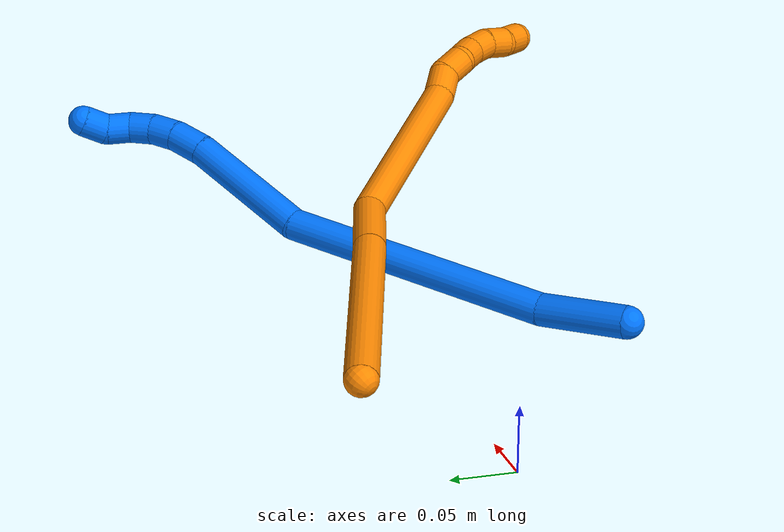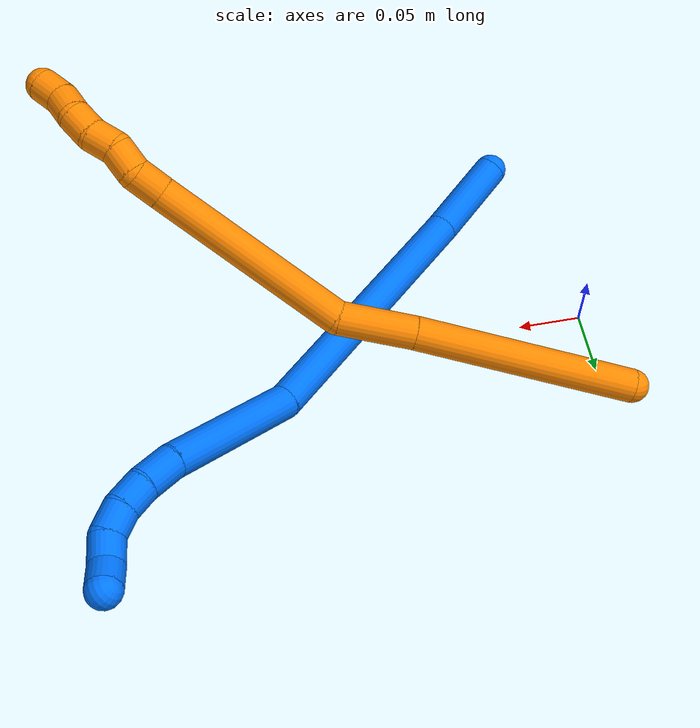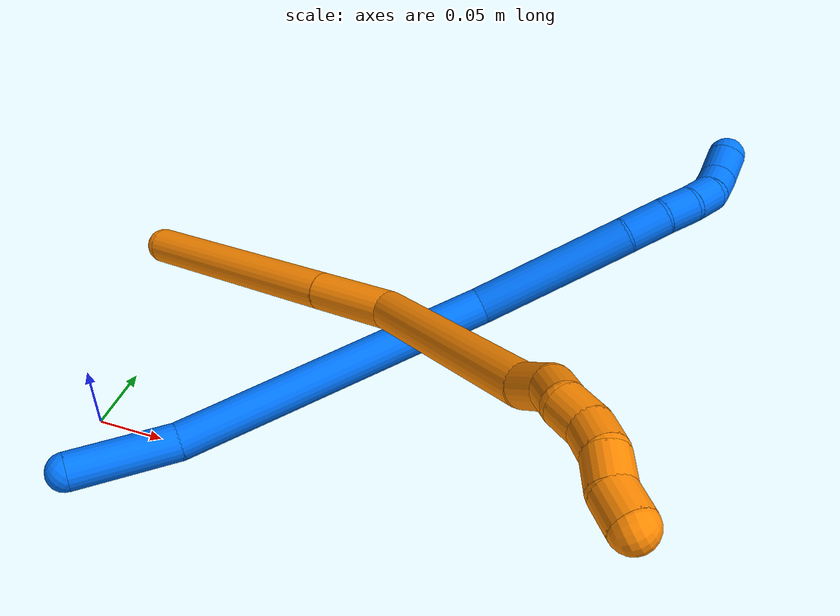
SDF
<sdf version="1.7">
 <world name="default">
  <model name="photoneo_s_sensor">
   <static>1</static>
   <pose>0 0 2 1.57079 1.57079 3.14159</pose>
   <link name="link">
    <inertial><mass>0.1</mass></inertial>
    <sensor name="sensor" type="depth">
     <update_rate>30</update_rate>
     <camera>
      <horizontal_fov>1.22</horizontal_fov>
      <image><width>1920</width><height>1200</height><format>B8G8R8</format></image>
      <clip><near>0.1</near><far>4</far></clip>
      <depth_camera><output>points</output></depth_camera>
     </camera>
     <plugin name="camera_plugin" filename="libgazebo_ros_depth_camera.so">
      <baseline>0.2</baseline>
      <alwaysOn>1</alwaysOn>
      <updateRate>0.0</updateRate>
      <cameraName>camera_ir</cameraName>
      <imageTopicName>/camera/color/image_raw</imageTopicName>
      <cameraInfoTopicName>/camera/color/camera_info</cameraInfoTopicName>
      <depthImageTopicName>/camera/depth/image_raw</depthImageTopicName>
      <depthImageCameraInfoTopicName>/camera/depth/camera_info</depthImageCameraInfoTopicName>
      <pointCloudTopicName>/camera/depth/points</pointCloudTopicName>
      <frameName>fr_optical</frameName>
      <pointCloudCutoff>0.1</pointCloudCutoff>
      <pointCloudCutoffMax>2.0</pointCloudCutoffMax>
      <distortionK1>0</distortionK1>
      <distortionK2>0</distortionK2>
      <distortionK3>0</distortionK3>
      <distortionT1>0</distortionT1>
      <distortionT2>0</distortionT2>
      <CxPrime>0</CxPrime>
      <Cx>0</Cx>
      <Cy>0</Cy>
      <focalLength>0</focalLength>
      <hackBaseline>0</hackBaseline>
     </plugin>
    </sensor>
   </link>
  </model>
  <model name="bin">
   <static>1</static>
   <link name="bottom">
    <collision name="collision-bottom">
     <pose>0 0 -0.01 0 -0 0</pose>
     <geometry><box><size>0.8 0.6 0.02</size></box></geometry>
     <surface>
      <friction><ode><mu>100</mu><mu2>100</mu2></ode></friction>
      <contact><collide_bitmask>65535</collide_bitmask></contact>
     </surface>
    </collision>
   </link>
   <link name="west_wall">
    <collision name="collision-west_wall">
     <pose>-0.41 0 0.1 0 -0 0</pose>
     <geometry><box><size>0.02 0.6 0.2</size></box></geometry>
     <surface>
      <friction><ode><mu>100</mu><mu2>100</mu2></ode></friction>
      <contact><collide_bitmask>65535</collide_bitmask></contact>
     </surface>
    </collision>
   </link>
   <link name="east_wall">
    <collision name="collision-east_wall">
     <pose>0.41 0 0.1 0 -0 0</pose>
     <geometry><box><size>0.02 0.6 0.2</size></box></geometry>
     <surface>
      <friction><ode><mu>100</mu><mu2>100</mu2></ode></friction>
      <contact><collide_bitmask>65535</collide_bitmask></contact>
     </surface>
    </collision>
   </link>
   <link name="south_wall">
    <collision name="collision-south_wall">
     <pose>0 -0.31 0.1 0 -0 0</pose>
     <geometry><box><size>0.8 0.02 0.2</size></box></geometry>
     <surface>
      <friction><ode><mu>100</mu><mu2>100</mu2></ode></friction>
      <contact><collide_bitmask>65535</collide_bitmask></contact>
     </surface>
    </collision>
   </link>
   <link name="north_wall">
    <collision name="collision-north_wall">
     <pose>0 0.31 0.1 0 -0 0</pose>
     <geometry><box><size>0.8 0.02 0.2</size></box></geometry>
     <surface>
      <friction><ode><mu>100</mu><mu2>100</mu2></ode></friction>
      <contact><collide_bitmask>65535</collide_bitmask></contact>
     </surface>
    </collision>
   </link>
  </model>
  <model name="14">
   <static>0</static>
   <link name="14">
    <collision name="collision-cylinder-e_1_1_4">
     <pose>0.018883 0.018399 -0.022484 -2.45576 0.576342 -1.38586</pose>
     <geometry><cylinder><radius>0.0125</radius><length>0.0693</length></cylinder></geometry>
     <surface>
      <friction><ode><mu>1.16</mu><mu2>1.16</mu2><slip1>0</slip1><slip2>0</slip2></ode></friction>
      <contact><ode><kp>1e+06</kp><kd>1</kd><max_vel>0</max_vel><min_depth>0.001</min_depth></ode></contact>
     </surface>
    </collision>
    <visual name="visual-cylinder-e_1_1_4">
     <pose>0.018883 0.018399 -0.022484 -2.45576 0.576342 -1.38586</pose>
     <geometry><cylinder><radius>0.0125</radius><length>0.0693</length></cylinder></geometry>
     <material><ambient>0 0.462745 1 1</ambient></material>
    </visual>
    <collision name="collision-cylinder-e_2_4_5">
     <pose>0.111124 0.093968 -0.098065 -2.31929 0.754589 -1.47542</pose>
     <geometry><cylinder><radius>0.0125</radius><length>0.214187</length></cylinder></geometry>
     <surface>
      <friction><ode><mu>1.16</mu><mu2>1.16</mu2><slip1>0</slip1><slip2>0</slip2></ode></friction>
      <contact><ode><kp>1e+06</kp><kd>1</kd><max_vel>0</max_vel><min_depth>0.001</min_depth></ode></contact>
     </surface>
    </collision>
    <visual name="visual-cylinder-e_2_4_5">
     <pose>0.111124 0.093968 -0.098065 -2.31929 0.754589 -1.47542</pose>
     <geometry><cylinder><radius>0.0125</radius><length>0.214187</length></cylinder></geometry>
     <material><ambient>0 0.462745 1 1</ambient></material>
    </visual>
    <collision name="collision-cylinder-e_3_5_6">
     <pose>0.230917 0.167378 -0.171991 -2.47928 1.05364 -2.07389</pose>
     <geometry><cylinder><radius>0.0125</radius><length>0.106843</length></cylinder></geometry>
     <surface>
      <friction><ode><mu>1.16</mu><mu2>1.16</mu2><slip1>0</slip1><slip2>0</slip2></ode></friction>
      <contact><ode><kp>1e+06</kp><kd>1</kd><max_vel>0</max_vel><min_depth>0.001</min_depth></ode></contact>
     </surface>
    </collision>
    <visual name="visual-cylinder-e_3_5_6">
     <pose>0.230917 0.167378 -0.171991 -2.47928 1.05364 -2.07389</pose>
     <geometry><cylinder><radius>0.0125</radius><length>0.106843</length></cylinder></geometry>
     <material><ambient>0 0.462745 1 1</ambient></material>
    </visual>
    <collision name="collision-cylinder-e_4_6_7">
     <pose>0.288293 0.189663 -0.198747 -2.34661 0.912308 -1.72606</pose>
     <geometry><cylinder><radius>0.0125</radius><length>0.027666</length></cylinder></geometry>
     <surface>
      <friction><ode><mu>1.16</mu><mu2>1.16</mu2><slip1>0</slip1><slip2>0</slip2></ode></friction>
      <contact><ode><kp>1e+06</kp><kd>1</kd><max_vel>0</max_vel><min_depth>0.001</min_depth></ode></contact>
     </surface>
    </collision>
    <visual name="visual-cylinder-e_4_6_7">
     <pose>0.288293 0.189663 -0.198747 -2.34661 0.912308 -1.72606</pose>
     <geometry><cylinder><radius>0.0125</radius><length>0.027666</length></cylinder></geometry>
     <material><ambient>0 0.462745 1 1</ambient></material>
    </visual>
    <collision name="collision-cylinder-e_5_7_8">
     <pose>0.30644 0.201647 -0.210054 -2.30655 0.732363 -1.42566</pose>
     <geometry><cylinder><radius>0.0125</radius><length>0.021555</length></cylinder></geometry>
     <surface>
      <friction><ode><mu>1.16</mu><mu2>1.16</mu2><slip1>0</slip1><slip2>0</slip2></ode></friction>
      <contact><ode><kp>1e+06</kp><kd>1</kd><max_vel>0</max_vel><min_depth>0.001</min_depth></ode></contact>
     </surface>
    </collision>
    <visual name="visual-cylinder-e_5_7_8">
     <pose>0.30644 0.201647 -0.210054 -2.30655 0.732363 -1.42566</pose>
     <geometry><cylinder><radius>0.0125</radius><length>0.021555</length></cylinder></geometry>
     <material><ambient>0 0.462745 1 1</ambient></material>
    </visual>
    <collision name="collision-cylinder-e_6_8_9">
     <pose>0.318689 0.215023 -0.220108 -2.13214 0.521197 -0.899406</pose>
     <geometry><cylinder><radius>0.0125</radius><length>0.020256</length></cylinder></geometry>
     <surface>
      <friction><ode><mu>1.16</mu><mu2>1.16</mu2><slip1>0</slip1><slip2>0</slip2></ode></friction>
      <contact><ode><kp>1e+06</kp><kd>1</kd><max_vel>0</max_vel><min_depth>0.001</min_depth></ode></contact>
     </surface>
    </collision>
    <visual name="visual-cylinder-e_6_8_9">
     <pose>0.318689 0.215023 -0.220108 -2.13214 0.521197 -0.899406</pose>
     <geometry><cylinder><radius>0.0125</radius><length>0.020256</length></cylinder></geometry>
     <material><ambient>0 0.462745 1 1</ambient></material>
    </visual>
    <collision name="collision-cylinder-e_7_9_10">
     <pose>0.326213 0.231974 -0.226699 -1.76949 0.25017 -0.304784</pose>
     <geometry><cylinder><radius>0.0125</radius><length>0.020038</length></cylinder></geometry>
     <surface>
      <friction><ode><mu>1.16</mu><mu2>1.16</mu2><slip1>0</slip1><slip2>0</slip2></ode></friction>
      <contact><ode><kp>1e+06</kp><kd>1</kd><max_vel>0</max_vel><min_depth>0.001</min_depth></ode></contact>
     </surface>
    </collision>
    <visual name="visual-cylinder-e_7_9_10">
     <pose>0.326213 0.231974 -0.226699 -1.76949 0.25017 -0.304784</pose>
     <geometry><cylinder><radius>0.0125</radius><length>0.020038</length></cylinder></geometry>
     <material><ambient>0 0.462745 1 1</ambient></material>
    </visual>
    <collision name="collision-cylinder-e_8_10_2">
     <pose>0.334384 0.249755 -0.227685 -1.45865 0.600122 -0.539548</pose>
     <geometry><cylinder><radius>0.0125</radius><length>0.020155</length></cylinder></geometry>
     <surface>
      <friction><ode><mu>1.16</mu><mu2>1.16</mu2><slip1>0</slip1><slip2>0</slip2></ode></friction>
      <contact><ode><kp>1e+06</kp><kd>1</kd><max_vel>0</max_vel><min_depth>0.001</min_depth></ode></contact>
     </surface>
    </collision>
    <visual name="visual-cylinder-e_8_10_2">
     <pose>0.334384 0.249755 -0.227685 -1.45865 0.600122 -0.539548</pose>
     <geometry><cylinder><radius>0.0125</radius><length>0.020155</length></cylinder></geometry>
     <material><ambient>0 0.462745 1 1</ambient></material>
    </visual>
    <collision name="collision-sphere-2">
     <pose>0.340075 0.258019 -0.226754 0 -0 0</pose>
     <geometry><sphere><radius>0.0125</radius></sphere></geometry>
     <surface>
      <friction><ode><mu>1.16</mu><mu2>1.16</mu2><slip1>0</slip1><slip2>0</slip2></ode></friction>
      <contact><ode><kp>1e+06</kp><kd>1</kd><max_vel>0</max_vel><min_depth>0.001</min_depth></ode></contact>
     </surface>
    </collision>
    <visual name="visual-sphere-2">
     <pose>0.340075 0.258019 -0.226754 0 -0 0</pose>
     <geometry><sphere><radius>0.0125</radius></sphere></geometry>
     <material><ambient>0 0.462745 1 1</ambient></material>
    </visual>
    <collision name="collision-sphere-10">
     <pose>0.328693 0.24149 -0.228615 0 -0 0</pose>
     <geometry><sphere><radius>0.0125</radius></sphere></geometry>
     <surface>
      <friction><ode><mu>1.16</mu><mu2>1.16</mu2><slip1>0</slip1><slip2>0</slip2></ode></friction>
      <contact><ode><kp>1e+06</kp><kd>1</kd><max_vel>0</max_vel><min_depth>0.001</min_depth></ode></contact>
     </surface>
    </collision>
    <visual name="visual-sphere-10">
     <pose>0.328693 0.24149 -0.228615 0 -0 0</pose>
     <geometry><sphere><radius>0.0125</radius></sphere></geometry>
     <material><ambient>0 0.462745 1 1</ambient></material>
    </visual>
    <collision name="collision-sphere-9">
     <pose>0.323732 0.222458 -0.224783 0 -0 0</pose>
     <geometry><sphere><radius>0.0125</radius></sphere></geometry>
     <surface>
      <friction><ode><mu>1.16</mu><mu2>1.16</mu2><slip1>0</slip1><slip2>0</slip2></ode></friction>
      <contact><ode><kp>1e+06</kp><kd>1</kd><max_vel>0</max_vel><min_depth>0.001</min_depth></ode></contact>
     </surface>
    </collision>
    <visual name="visual-sphere-9">
     <pose>0.323732 0.222458 -0.224783 0 -0 0</pose>
     <geometry><sphere><radius>0.0125</radius></sphere></geometry>
     <material><ambient>0 0.462745 1 1</ambient></material>
    </visual>
    <collision name="collision-sphere-4">
     <pose>0.037766 0.036799 -0.044967 0 -0 0</pose>
     <geometry><sphere><radius>0.0125</radius></sphere></geometry>
     <surface>
      <friction><ode><mu>1.16</mu><mu2>1.16</mu2><slip1>0</slip1><slip2>0</slip2></ode></friction>
      <contact><ode><kp>1e+06</kp><kd>1</kd><max_vel>0</max_vel><min_depth>0.001</min_depth></ode></contact>
     </surface>
    </collision>
    <visual name="visual-sphere-4">
     <pose>0.037766 0.036799 -0.044967 0 -0 0</pose>
     <geometry><sphere><radius>0.0125</radius></sphere></geometry>
     <material><ambient>0 0.462745 1 1</ambient></material>
    </visual>
    <collision name="collision-sphere-1">
     <geometry><sphere><radius>0.0125</radius></sphere></geometry>
     <surface>
      <friction><ode><mu>1.16</mu><mu2>1.16</mu2><slip1>0</slip1><slip2>0</slip2></ode></friction>
      <contact><ode><kp>1e+06</kp><kd>1</kd><max_vel>0</max_vel><min_depth>0.001</min_depth></ode></contact>
     </surface>
    </collision>
    <visual name="visual-sphere-1">
     <geometry><sphere><radius>0.0125</radius></sphere></geometry>
     <material><ambient>0 0.462745 1 1</ambient></material>
    </visual>
    <collision name="collision-sphere-8">
     <pose>0.313646 0.207588 -0.215432 0 -0 0</pose>
     <geometry><sphere><radius>0.0125</radius></sphere></geometry>
     <surface>
      <friction><ode><mu>1.16</mu><mu2>1.16</mu2><slip1>0</slip1><slip2>0</slip2></ode></friction>
      <contact><ode><kp>1e+06</kp><kd>1</kd><max_vel>0</max_vel><min_depth>0.001</min_depth></ode></contact>
     </surface>
    </collision>
    <visual name="visual-sphere-8">
     <pose>0.313646 0.207588 -0.215432 0 -0 0</pose>
     <geometry><sphere><radius>0.0125</radius></sphere></geometry>
     <material><ambient>0 0.462745 1 1</ambient></material>
    </visual>
    <collision name="collision-sphere-5">
     <pose>0.184482 0.151136 -0.151163 0 -0 0</pose>
     <geometry><sphere><radius>0.0125</radius></sphere></geometry>
     <surface>
      <friction><ode><mu>1.16</mu><mu2>1.16</mu2><slip1>0</slip1><slip2>0</slip2></ode></friction>
      <contact><ode><kp>1e+06</kp><kd>1</kd><max_vel>0</max_vel><min_depth>0.001</min_depth></ode></contact>
     </surface>
    </collision>
    <visual name="visual-sphere-5">
     <pose>0.184482 0.151136 -0.151163 0 -0 0</pose>
     <geometry><sphere><radius>0.0125</radius></sphere></geometry>
     <material><ambient>0 0.462745 1 1</ambient></material>
    </visual>
    <collision name="collision-sphere-6">
     <pose>0.277353 0.183621 -0.192819 0 -0 0</pose>
     <geometry><sphere><radius>0.0125</radius></sphere></geometry>
     <surface>
      <friction><ode><mu>1.16</mu><mu2>1.16</mu2><slip1>0</slip1><slip2>0</slip2></ode></friction>
      <contact><ode><kp>1e+06</kp><kd>1</kd><max_vel>0</max_vel><min_depth>0.001</min_depth></ode></contact>
     </surface>
    </collision>
    <visual name="visual-sphere-6">
     <pose>0.277353 0.183621 -0.192819 0 -0 0</pose>
     <geometry><sphere><radius>0.0125</radius></sphere></geometry>
     <material><ambient>0 0.462745 1 1</ambient></material>
    </visual>
    <collision name="collision-sphere-7">
     <pose>0.299234 0.195706 -0.204675 0 -0 0</pose>
     <geometry><sphere><radius>0.0125</radius></sphere></geometry>
     <surface>
      <friction><ode><mu>1.16</mu><mu2>1.16</mu2><slip1>0</slip1><slip2>0</slip2></ode></friction>
      <contact><ode><kp>1e+06</kp><kd>1</kd><max_vel>0</max_vel><min_depth>0.001</min_depth></ode></contact>
     </surface>
    </collision>
    <visual name="visual-sphere-7">
     <pose>0.299234 0.195706 -0.204675 0 -0 0</pose>
     <geometry><sphere><radius>0.0125</radius></sphere></geometry>
     <material><ambient>0 0.462745 1 1</ambient></material>
    </visual>
    <inertial>
     <pose>0.168189 0.125833 -0.12911 0 -0 0</pose>
     <mass>0.5</mass>
     <inertia>
      <ixx>-0.000609</ixx>
      <ixy>0</ixy>
      <ixz>0</ixz>
      <iyy>-0.000197</iyy>
      <iyz>0</iyz>
      <izz>-0.001194</izz>
     </inertia>
    </inertial>
   </link>
   <pose>0.05721 -0.102086 0.080776 -0.190554 -0.87636 0.343224</pose>
  </model>
  <model name="19">
   <static>0</static>
   <link name="19">
    <collision name="collision-cylinder-e_1_1_4">
     <pose>0.057549 0.016318 0.057114 -0.27829 0.769574 -0.113312</pose>
     <geometry><cylinder><radius>0.0125</radius><length>0.165411</length></cylinder></geometry>
     <surface>
      <friction><ode><mu>1.16</mu><mu2>1.16</mu2><slip1>0</slip1><slip2>0</slip2></ode></friction>
      <contact><ode><kp>1e+06</kp><kd>1</kd><max_vel>0</max_vel><min_depth>0.001</min_depth></ode></contact>
     </surface>
    </collision>
    <visual name="visual-cylinder-e_1_1_4">
     <pose>0.057549 0.016318 0.057114 -0.27829 0.769574 -0.113312</pose>
     <geometry><cylinder><radius>0.0125</radius><length>0.165411</length></cylinder></geometry>
     <material><ambient>0.996078 0.537255 0 1</ambient></material>
    </visual>
    <collision name="collision-cylinder-e_2_4_5">
     <pose>0.134073 0.039268 0.134191 -0.32075 0.733944 -0.124199</pose>
     <geometry><cylinder><radius>0.0125</radius><length>0.056658</length></cylinder></geometry>
     <surface>
      <friction><ode><mu>1.16</mu><mu2>1.16</mu2><slip1>0</slip1><slip2>0</slip2></ode></friction>
      <contact><ode><kp>1e+06</kp><kd>1</kd><max_vel>0</max_vel><min_depth>0.001</min_depth></ode></contact>
     </surface>
    </collision>
    <visual name="visual-cylinder-e_2_4_5">
     <pose>0.134073 0.039268 0.134191 -0.32075 0.733944 -0.124199</pose>
     <geometry><cylinder><radius>0.0125</radius><length>0.056658</length></cylinder></geometry>
     <material><ambient>0.996078 0.537255 0 1</ambient></material>
    </visual>
    <collision name="collision-cylinder-e_3_5_6">
     <pose>0.220533 0.043082 0.189122 0.080406 1.0914 0.04884</pose>
     <geometry><cylinder><radius>0.0125</radius><length>0.152117</length></cylinder></geometry>
     <surface>
      <friction><ode><mu>1.16</mu><mu2>1.16</mu2><slip1>0</slip1><slip2>0</slip2></ode></friction>
      <contact><ode><kp>1e+06</kp><kd>1</kd><max_vel>0</max_vel><min_depth>0.001</min_depth></ode></contact>
     </surface>
    </collision>
    <visual name="visual-cylinder-e_3_5_6">
     <pose>0.220533 0.043082 0.189122 0.080406 1.0914 0.04884</pose>
     <geometry><cylinder><radius>0.0125</radius><length>0.152117</length></cylinder></geometry>
     <material><ambient>0.996078 0.537255 0 1</ambient></material>
    </visual>
    <collision name="collision-cylinder-e_4_6_7">
     <pose>0.296928 0.037514 0.231441 0.358035 0.848644 0.163136</pose>
     <geometry><cylinder><radius>0.0125</radius><length>0.023749</length></cylinder></geometry>
     <surface>
      <friction><ode><mu>1.16</mu><mu2>1.16</mu2><slip1>0</slip1><slip2>0</slip2></ode></friction>
      <contact><ode><kp>1e+06</kp><kd>1</kd><max_vel>0</max_vel><min_depth>0.001</min_depth></ode></contact>
     </surface>
    </collision>
    <visual name="visual-cylinder-e_4_6_7">
     <pose>0.296928 0.037514 0.231441 0.358035 0.848644 0.163136</pose>
     <geometry><cylinder><radius>0.0125</radius><length>0.023749</length></cylinder></geometry>
     <material><ambient>0.996078 0.537255 0 1</ambient></material>
    </visual>
    <collision name="collision-cylinder-e_5_7_8">
     <pose>0.316205 0.032712 0.240694 0.823158 1.3073 0.645344</pose>
     <geometry><cylinder><radius>0.0125</radius><length>0.021474</length></cylinder></geometry>
     <surface>
      <friction><ode><mu>1.16</mu><mu2>1.16</mu2><slip1>0</slip1><slip2>0</slip2></ode></friction>
      <contact><ode><kp>1e+06</kp><kd>1</kd><max_vel>0</max_vel><min_depth>0.001</min_depth></ode></contact>
     </surface>
    </collision>
    <visual name="visual-cylinder-e_5_7_8">
     <pose>0.316205 0.032712 0.240694 0.823158 1.3073 0.645344</pose>
     <geometry><cylinder><radius>0.0125</radius><length>0.021474</length></cylinder></geometry>
     <material><ambient>0.996078 0.537255 0 1</ambient></material>
    </visual>
    <collision name="collision-cylinder-e_6_8_9">
     <pose>0.335909 0.03237 0.246234 -0.438963 1.16423 -0.291572</pose>
     <geometry><cylinder><radius>0.0125</radius><length>0.020332</length></cylinder></geometry>
     <surface>
      <friction><ode><mu>1.16</mu><mu2>1.16</mu2><slip1>0</slip1><slip2>0</slip2></ode></friction>
      <contact><ode><kp>1e+06</kp><kd>1</kd><max_vel>0</max_vel><min_depth>0.001</min_depth></ode></contact>
     </surface>
    </collision>
    <visual name="visual-cylinder-e_6_8_9">
     <pose>0.335909 0.03237 0.246234 -0.438963 1.16423 -0.291572</pose>
     <geometry><cylinder><radius>0.0125</radius><length>0.020332</length></cylinder></geometry>
     <material><ambient>0.996078 0.537255 0 1</ambient></material>
    </visual>
    <collision name="collision-cylinder-e_7_9_10">
     <pose>0.355236 0.034379 0.251048 -0.25035 1.45005 -0.22206</pose>
     <geometry><cylinder><radius>0.0125</radius><length>0.020128</length></cylinder></geometry>
     <surface>
      <friction><ode><mu>1.16</mu><mu2>1.16</mu2><slip1>0</slip1><slip2>0</slip2></ode></friction>
      <contact><ode><kp>1e+06</kp><kd>1</kd><max_vel>0</max_vel><min_depth>0.001</min_depth></ode></contact>
     </surface>
    </collision>
    <visual name="visual-cylinder-e_7_9_10">
     <pose>0.355236 0.034379 0.251048 -0.25035 1.45005 -0.22206</pose>
     <geometry><cylinder><radius>0.0125</radius><length>0.020128</length></cylinder></geometry>
     <material><ambient>0.996078 0.537255 0 1</ambient></material>
    </visual>
    <collision name="collision-cylinder-e_8_10_11">
     <pose>0.374936 0.036388 0.250501 -2.35969 1.32602 -2.17034</pose>
     <geometry><cylinder><radius>0.0125</radius><length>0.020015</length></cylinder></geometry>
     <surface>
      <friction><ode><mu>1.16</mu><mu2>1.16</mu2><slip1>0</slip1><slip2>0</slip2></ode></friction>
      <contact><ode><kp>1e+06</kp><kd>1</kd><max_vel>0</max_vel><min_depth>0.001</min_depth></ode></contact>
     </surface>
    </collision>
    <visual name="visual-cylinder-e_8_10_11">
     <pose>0.374936 0.036388 0.250501 -2.35969 1.32602 -2.17034</pose>
     <geometry><cylinder><radius>0.0125</radius><length>0.020015</length></cylinder></geometry>
     <material><ambient>0.996078 0.537255 0 1</ambient></material>
    </visual>
    <collision name="collision-cylinder-e_9_11_2">
     <pose>0.394357 0.040361 0.250095 -1.04467 1.3075 -0.830755</pose>
     <geometry><cylinder><radius>0.0125</radius><length>0.020116</length></cylinder></geometry>
     <surface>
      <friction><ode><mu>1.16</mu><mu2>1.16</mu2><slip1>0</slip1><slip2>0</slip2></ode></friction>
      <contact><ode><kp>1e+06</kp><kd>1</kd><max_vel>0</max_vel><min_depth>0.001</min_depth></ode></contact>
     </surface>
    </collision>
    <visual name="visual-cylinder-e_9_11_2">
     <pose>0.394357 0.040361 0.250095 -1.04467 1.3075 -0.830755</pose>
     <geometry><cylinder><radius>0.0125</radius><length>0.020116</length></cylinder></geometry>
     <material><ambient>0.996078 0.537255 0 1</ambient></material>
    </visual>
    <collision name="collision-sphere-2">
     <pose>0.404068 0.042625 0.251409 0 -0 0</pose>
     <geometry><sphere><radius>0.0125</radius></sphere></geometry>
     <surface>
      <friction><ode><mu>1.16</mu><mu2>1.16</mu2><slip1>0</slip1><slip2>0</slip2></ode></friction>
      <contact><ode><kp>1e+06</kp><kd>1</kd><max_vel>0</max_vel><min_depth>0.001</min_depth></ode></contact>
     </surface>
    </collision>
    <visual name="visual-sphere-2">
     <pose>0.404068 0.042625 0.251409 0 -0 0</pose>
     <geometry><sphere><radius>0.0125</radius></sphere></geometry>
     <material><ambient>0.996078 0.537255 0 1</ambient></material>
    </visual>
    <collision name="collision-sphere-11">
     <pose>0.384646 0.038097 0.24878 0 -0 0</pose>
     <geometry><sphere><radius>0.0125</radius></sphere></geometry>
     <surface>
      <friction><ode><mu>1.16</mu><mu2>1.16</mu2><slip1>0</slip1><slip2>0</slip2></ode></friction>
      <contact><ode><kp>1e+06</kp><kd>1</kd><max_vel>0</max_vel><min_depth>0.001</min_depth></ode></contact>
     </surface>
    </collision>
    <visual name="visual-sphere-11">
     <pose>0.384646 0.038097 0.24878 0 -0 0</pose>
     <geometry><sphere><radius>0.0125</radius></sphere></geometry>
     <material><ambient>0.996078 0.537255 0 1</ambient></material>
    </visual>
    <collision name="collision-sphere-10">
     <pose>0.365227 0.034679 0.252222 0 -0 0</pose>
     <geometry><sphere><radius>0.0125</radius></sphere></geometry>
     <surface>
      <friction><ode><mu>1.16</mu><mu2>1.16</mu2><slip1>0</slip1><slip2>0</slip2></ode></friction>
      <contact><ode><kp>1e+06</kp><kd>1</kd><max_vel>0</max_vel><min_depth>0.001</min_depth></ode></contact>
     </surface>
    </collision>
    <visual name="visual-sphere-10">
     <pose>0.365227 0.034679 0.252222 0 -0 0</pose>
     <geometry><sphere><radius>0.0125</radius></sphere></geometry>
     <material><ambient>0.996078 0.537255 0 1</ambient></material>
    </visual>
    <collision name="collision-sphere-9">
     <pose>0.345246 0.034079 0.249873 0 -0 0</pose>
     <geometry><sphere><radius>0.0125</radius></sphere></geometry>
     <surface>
      <friction><ode><mu>1.16</mu><mu2>1.16</mu2><slip1>0</slip1><slip2>0</slip2></ode></friction>
      <contact><ode><kp>1e+06</kp><kd>1</kd><max_vel>0</max_vel><min_depth>0.001</min_depth></ode></contact>
     </surface>
    </collision>
    <visual name="visual-sphere-9">
     <pose>0.345246 0.034079 0.249873 0 -0 0</pose>
     <geometry><sphere><radius>0.0125</radius></sphere></geometry>
     <material><ambient>0.996078 0.537255 0 1</ambient></material>
    </visual>
    <collision name="collision-sphere-4">
     <pose>0.115098 0.032636 0.114229 0 -0 0</pose>
     <geometry><sphere><radius>0.0125</radius></sphere></geometry>
     <surface>
      <friction><ode><mu>1.16</mu><mu2>1.16</mu2><slip1>0</slip1><slip2>0</slip2></ode></friction>
      <contact><ode><kp>1e+06</kp><kd>1</kd><max_vel>0</max_vel><min_depth>0.001</min_depth></ode></contact>
     </surface>
    </collision>
    <visual name="visual-sphere-4">
     <pose>0.115098 0.032636 0.114229 0 -0 0</pose>
     <geometry><sphere><radius>0.0125</radius></sphere></geometry>
     <material><ambient>0.996078 0.537255 0 1</ambient></material>
    </visual>
    <collision name="collision-sphere-1">
     <geometry><sphere><radius>0.0125</radius></sphere></geometry>
     <surface>
      <friction><ode><mu>1.16</mu><mu2>1.16</mu2><slip1>0</slip1><slip2>0</slip2></ode></friction>
      <contact><ode><kp>1e+06</kp><kd>1</kd><max_vel>0</max_vel><min_depth>0.001</min_depth></ode></contact>
     </surface>
    </collision>
    <visual name="visual-sphere-1">
     <geometry><sphere><radius>0.0125</radius></sphere></geometry>
     <material><ambient>0.996078 0.537255 0 1</ambient></material>
    </visual>
    <collision name="collision-sphere-8">
     <pose>0.326571 0.030662 0.242595 0 -0 0</pose>
     <geometry><sphere><radius>0.0125</radius></sphere></geometry>
     <surface>
      <friction><ode><mu>1.16</mu><mu2>1.16</mu2><slip1>0</slip1><slip2>0</slip2></ode></friction>
      <contact><ode><kp>1e+06</kp><kd>1</kd><max_vel>0</max_vel><min_depth>0.001</min_depth></ode></contact>
     </surface>
    </collision>
    <visual name="visual-sphere-8">
     <pose>0.326571 0.030662 0.242595 0 -0 0</pose>
     <geometry><sphere><radius>0.0125</radius></sphere></geometry>
     <material><ambient>0.996078 0.537255 0 1</ambient></material>
    </visual>
    <collision name="collision-sphere-5">
     <pose>0.153048 0.0459 0.154154 0 -0 0</pose>
     <geometry><sphere><radius>0.0125</radius></sphere></geometry>
     <surface>
      <friction><ode><mu>1.16</mu><mu2>1.16</mu2><slip1>0</slip1><slip2>0</slip2></ode></friction>
      <contact><ode><kp>1e+06</kp><kd>1</kd><max_vel>0</max_vel><min_depth>0.001</min_depth></ode></contact>
     </surface>
    </collision>
    <visual name="visual-sphere-5">
     <pose>0.153048 0.0459 0.154154 0 -0 0</pose>
     <geometry><sphere><radius>0.0125</radius></sphere></geometry>
     <material><ambient>0.996078 0.537255 0 1</ambient></material>
    </visual>
    <collision name="collision-sphere-6">
     <pose>0.288018 0.040264 0.22409 0 -0 0</pose>
     <geometry><sphere><radius>0.0125</radius></sphere></geometry>
     <surface>
      <friction><ode><mu>1.16</mu><mu2>1.16</mu2><slip1>0</slip1><slip2>0</slip2></ode></friction>
      <contact><ode><kp>1e+06</kp><kd>1</kd><max_vel>0</max_vel><min_depth>0.001</min_depth></ode></contact>
     </surface>
    </collision>
    <visual name="visual-sphere-6">
     <pose>0.288018 0.040264 0.22409 0 -0 0</pose>
     <geometry><sphere><radius>0.0125</radius></sphere></geometry>
     <material><ambient>0.996078 0.537255 0 1</ambient></material>
    </visual>
    <collision name="collision-sphere-7">
     <pose>0.305839 0.034763 0.238792 0 -0 0</pose>
     <geometry><sphere><radius>0.0125</radius></sphere></geometry>
     <surface>
      <friction><ode><mu>1.16</mu><mu2>1.16</mu2><slip1>0</slip1><slip2>0</slip2></ode></friction>
      <contact><ode><kp>1e+06</kp><kd>1</kd><max_vel>0</max_vel><min_depth>0.001</min_depth></ode></contact>
     </surface>
    </collision>
    <visual name="visual-sphere-7">
     <pose>0.305839 0.034763 0.238792 0 -0 0</pose>
     <geometry><sphere><radius>0.0125</radius></sphere></geometry>
     <material><ambient>0.996078 0.537255 0 1</ambient></material>
    </visual>
    <inertial>
     <pose>0.187843 0.031922 0.153177 0 -0 0</pose>
     <mass>0.5</mass>
     <inertia>
      <ixx>0.000432</ixx>
      <ixy>0</ixy>
      <ixz>0</ixz>
      <iyy>0.000677</iyy>
      <iyz>0</iyz>
      <izz>-0.000602</izz>
     </inertia>
    </inertial>
   </link>
   <pose>0.003325 0.11279 0.08101 -1.10224 -0.144509 -1.12422</pose>
  </model>
 </world>
</sdf>
